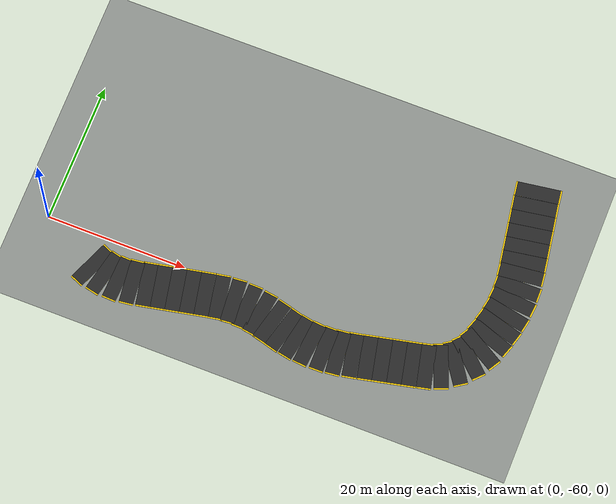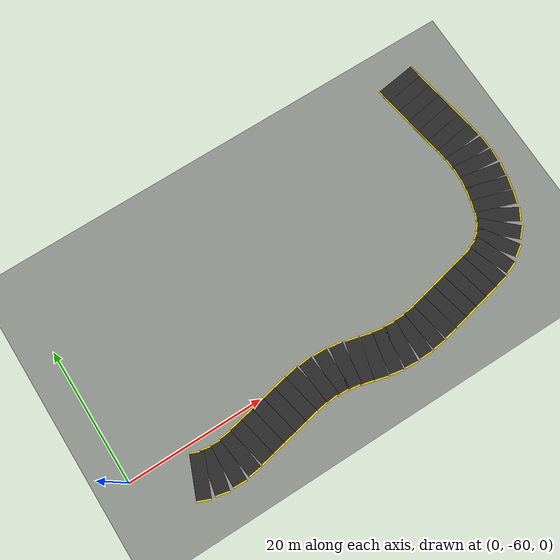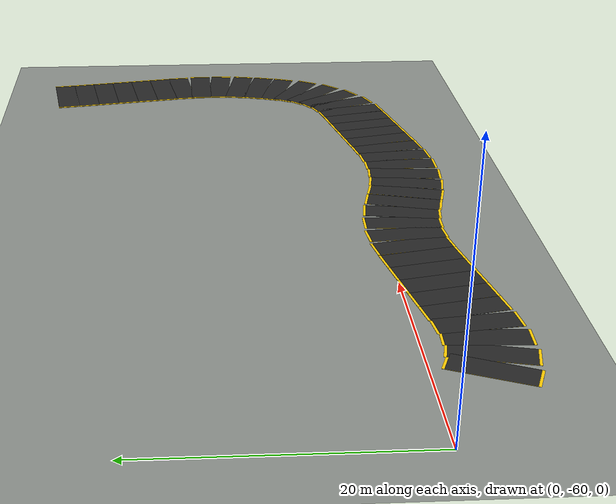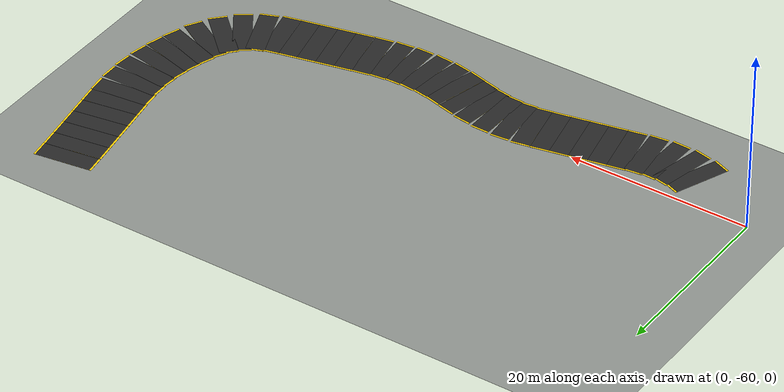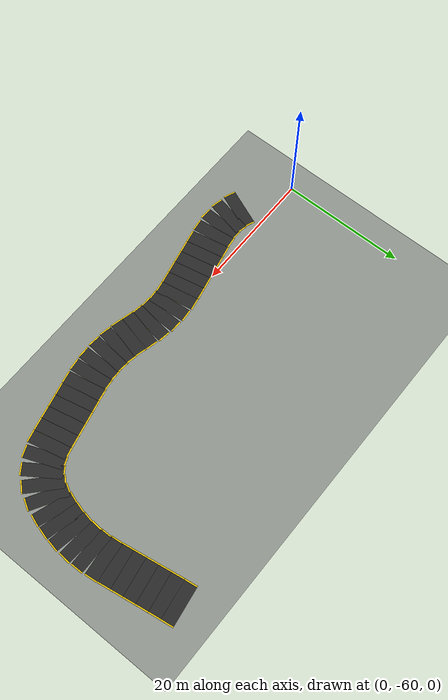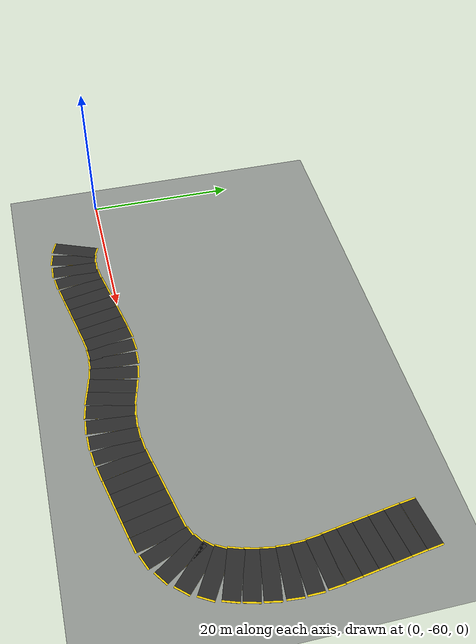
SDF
<sdf version="1.7">
 <world name="custom_road_world">
  <model name="ground_plane">
   <static>true</static>
   <pose>25 -32 -0.005 0 0 0</pose>
   <link name="link">
    <collision name="collision">
     <geometry><plane><normal>0 0 1</normal><size>180 180</size></plane></geometry>
    </collision>
    <visual name="visual">
     <geometry><plane><normal>0 0 1</normal><size>180 180</size></plane></geometry>
     <material>
      <ambient>0.54 0.56 0.54 1</ambient>
      <diffuse>0.54 0.56 0.54 1</diffuse>
      <specular>0.04 0.04 0.04 1</specular>
     </material>
    </visual>
   </link>
  </model>
  <model name="elliptical_road">
   <static>true</static>
   <link name="seg_43">
    <pose>60.941 -32.421 0.01 0 0 -1.426</pose>
    <visual name="yellow_base_43">
     <pose>0 0 0.001 0 0 0</pose>
     <geometry><box><size>2.0 6.4 0.02</size></box></geometry>
     <material>
      <ambient>1.0 0.8 0.0 1.0</ambient>
      <diffuse>1.0 0.8 0.0 1.0</diffuse>
      <specular>0.1 0.1 0.1 1.0</specular>
     </material>
    </visual>
    <visual name="asphalt_top_43">
     <pose>0 0 0.002 0 0 0</pose>
     <geometry><box><size>2.0 6.0 0.02</size></box></geometry>
     <material>
      <ambient>0.15 0.15 0.15 1.0</ambient>
      <diffuse>0.15 0.15 0.15 1.0</diffuse>
      <specular>0.05 0.05 0.05 1.0</specular>
     </material>
    </visual>
    <visual name="center_line_43">
     <pose>0 0 0.003 0 0 0</pose>
     <geometry><box><size>1.0 0.15 0.001</size></box></geometry>
     <material><ambient>0.9 0.9 0.9 1</ambient><diffuse>0.9 0.9 0.9 1</diffuse></material>
    </visual>
    <collision name="collision_43">
     <pose>0 0 0.002 0 0 0</pose>
     <geometry><box><size>2.0 6.0 0.02</size></box></geometry>
    </collision>
   </link>
   <link name="seg_44">
    <pose>61.233 -34.421 0.01 0 0 -1.411</pose>
    <visual name="yellow_base_44">
     <pose>0 0 0.001 0 0 0</pose>
     <geometry><box><size>2.0 6.4 0.02</size></box></geometry>
     <material>
      <ambient>1.0 0.8 0.0 1.0</ambient>
      <diffuse>1.0 0.8 0.0 1.0</diffuse>
      <specular>0.1 0.1 0.1 1.0</specular>
     </material>
    </visual>
    <visual name="asphalt_top_44">
     <pose>0 0 0.002 0 0 0</pose>
     <geometry><box><size>2.0 6.0 0.02</size></box></geometry>
     <material>
      <ambient>0.15 0.15 0.15 1.0</ambient>
      <diffuse>0.15 0.15 0.15 1.0</diffuse>
      <specular>0.05 0.05 0.05 1.0</specular>
     </material>
    </visual>
    <visual name="center_line_44">
     <pose>0 0 0.003 0 0 0</pose>
     <geometry><box><size>1.0 0.15 0.001</size></box></geometry>
     <material><ambient>0.9 0.9 0.9 1</ambient><diffuse>0.9 0.9 0.9 1</diffuse></material>
    </visual>
    <collision name="collision_44">
     <pose>0 0 0.002 0 0 0</pose>
     <geometry><box><size>2.0 6.0 0.02</size></box></geometry>
    </collision>
   </link>
   <link name="seg_45">
    <pose>61.553 -36.396 0.01 0 0 -1.411</pose>
    <visual name="yellow_base_45">
     <pose>0 0 0.001 0 0 0</pose>
     <geometry><box><size>2.0 6.4 0.02</size></box></geometry>
     <material>
      <ambient>1.0 0.8 0.0 1.0</ambient>
      <diffuse>1.0 0.8 0.0 1.0</diffuse>
      <specular>0.1 0.1 0.1 1.0</specular>
     </material>
    </visual>
    <visual name="asphalt_top_45">
     <pose>0 0 0.002 0 0 0</pose>
     <geometry><box><size>2.0 6.0 0.02</size></box></geometry>
     <material>
      <ambient>0.15 0.15 0.15 1.0</ambient>
      <diffuse>0.15 0.15 0.15 1.0</diffuse>
      <specular>0.05 0.05 0.05 1.0</specular>
     </material>
    </visual>
    <visual name="center_line_45">
     <pose>0 0 0.003 0 0 0</pose>
     <geometry><box><size>1.0 0.15 0.001</size></box></geometry>
     <material><ambient>0.9 0.9 0.9 1</ambient><diffuse>0.9 0.9 0.9 1</diffuse></material>
    </visual>
    <collision name="collision_45">
     <pose>0 0 0.002 0 0 0</pose>
     <geometry><box><size>2.0 6.0 0.02</size></box></geometry>
    </collision>
   </link>
   <link name="seg_46">
    <pose>61.872 -38.370 0.01 0 0 -1.411</pose>
    <visual name="yellow_base_46">
     <pose>0 0 0.001 0 0 0</pose>
     <geometry><box><size>2.0 6.4 0.02</size></box></geometry>
     <material>
      <ambient>1.0 0.8 0.0 1.0</ambient>
      <diffuse>1.0 0.8 0.0 1.0</diffuse>
      <specular>0.1 0.1 0.1 1.0</specular>
     </material>
    </visual>
    <visual name="asphalt_top_46">
     <pose>0 0 0.002 0 0 0</pose>
     <geometry><box><size>2.0 6.0 0.02</size></box></geometry>
     <material>
      <ambient>0.15 0.15 0.15 1.0</ambient>
      <diffuse>0.15 0.15 0.15 1.0</diffuse>
      <specular>0.05 0.05 0.05 1.0</specular>
     </material>
    </visual>
    <visual name="center_line_46">
     <pose>0 0 0.003 0 0 0</pose>
     <geometry><box><size>1.0 0.15 0.001</size></box></geometry>
     <material><ambient>0.9 0.9 0.9 1</ambient><diffuse>0.9 0.9 0.9 1</diffuse></material>
    </visual>
    <collision name="collision_46">
     <pose>0 0 0.002 0 0 0</pose>
     <geometry><box><size>2.0 6.0 0.02</size></box></geometry>
    </collision>
   </link>
   <link name="seg_47">
    <pose>62.191 -40.344 0.01 0 0 -1.411</pose>
    <visual name="yellow_base_47">
     <pose>0 0 0.001 0 0 0</pose>
     <geometry><box><size>2.0 6.4 0.02</size></box></geometry>
     <material>
      <ambient>1.0 0.8 0.0 1.0</ambient>
      <diffuse>1.0 0.8 0.0 1.0</diffuse>
      <specular>0.1 0.1 0.1 1.0</specular>
     </material>
    </visual>
    <visual name="asphalt_top_47">
     <pose>0 0 0.002 0 0 0</pose>
     <geometry><box><size>2.0 6.0 0.02</size></box></geometry>
     <material>
      <ambient>0.15 0.15 0.15 1.0</ambient>
      <diffuse>0.15 0.15 0.15 1.0</diffuse>
      <specular>0.05 0.05 0.05 1.0</specular>
     </material>
    </visual>
    <visual name="center_line_47">
     <pose>0 0 0.003 0 0 0</pose>
     <geometry><box><size>1.0 0.15 0.001</size></box></geometry>
     <material><ambient>0.9 0.9 0.9 1</ambient><diffuse>0.9 0.9 0.9 1</diffuse></material>
    </visual>
    <collision name="collision_47">
     <pose>0 0 0.002 0 0 0</pose>
     <geometry><box><size>2.0 6.0 0.02</size></box></geometry>
    </collision>
   </link>
   <link name="seg_48">
    <pose>62.510 -42.319 0.01 0 0 -1.413</pose>
    <visual name="yellow_base_48">
     <pose>0 0 0.001 0 0 0</pose>
     <geometry><box><size>2.0 6.4 0.02</size></box></geometry>
     <material>
      <ambient>1.0 0.8 0.0 1.0</ambient>
      <diffuse>1.0 0.8 0.0 1.0</diffuse>
      <specular>0.1 0.1 0.1 1.0</specular>
     </material>
    </visual>
    <visual name="asphalt_top_48">
     <pose>0 0 0.002 0 0 0</pose>
     <geometry><box><size>2.0 6.0 0.02</size></box></geometry>
     <material>
      <ambient>0.15 0.15 0.15 1.0</ambient>
      <diffuse>0.15 0.15 0.15 1.0</diffuse>
      <specular>0.05 0.05 0.05 1.0</specular>
     </material>
    </visual>
    <visual name="center_line_48">
     <pose>0 0 0.003 0 0 0</pose>
     <geometry><box><size>1.0 0.15 0.001</size></box></geometry>
     <material><ambient>0.9 0.9 0.9 1</ambient><diffuse>0.9 0.9 0.9 1</diffuse></material>
    </visual>
    <collision name="collision_48">
     <pose>0 0 0.002 0 0 0</pose>
     <geometry><box><size>2.0 6.0 0.02</size></box></geometry>
    </collision>
   </link>
   <link name="seg_49">
    <pose>62.812 -44.216 0.01 0 0 -1.463</pose>
    <visual name="yellow_base_49">
     <pose>0 0 0.001 0 0 0</pose>
     <geometry><box><size>2.0 6.4 0.02</size></box></geometry>
     <material>
      <ambient>1.0 0.8 0.0 1.0</ambient>
      <diffuse>1.0 0.8 0.0 1.0</diffuse>
      <specular>0.1 0.1 0.1 1.0</specular>
     </material>
    </visual>
    <visual name="asphalt_top_49">
     <pose>0 0 0.002 0 0 0</pose>
     <geometry><box><size>2.0 6.0 0.02</size></box></geometry>
     <material>
      <ambient>0.15 0.15 0.15 1.0</ambient>
      <diffuse>0.15 0.15 0.15 1.0</diffuse>
      <specular>0.05 0.05 0.05 1.0</specular>
     </material>
    </visual>
    <visual name="center_line_49">
     <pose>0 0 0.003 0 0 0</pose>
     <geometry><box><size>1.0 0.15 0.001</size></box></geometry>
     <material><ambient>0.9 0.9 0.9 1</ambient><diffuse>0.9 0.9 0.9 1</diffuse></material>
    </visual>
    <collision name="collision_49">
     <pose>0 0 0.002 0 0 0</pose>
     <geometry><box><size>2.0 6.0 0.02</size></box></geometry>
    </collision>
   </link>
   <link name="seg_50">
    <pose>63.034 -46.258 0.01 0 0 -1.560</pose>
    <visual name="yellow_base_50">
     <pose>0 0 0.001 0 0 0</pose>
     <geometry><box><size>2.0 6.4 0.02</size></box></geometry>
     <material>
      <ambient>1.0 0.8 0.0 1.0</ambient>
      <diffuse>1.0 0.8 0.0 1.0</diffuse>
      <specular>0.1 0.1 0.1 1.0</specular>
     </material>
    </visual>
    <visual name="asphalt_top_50">
     <pose>0 0 0.002 0 0 0</pose>
     <geometry><box><size>2.0 6.0 0.02</size></box></geometry>
     <material>
      <ambient>0.15 0.15 0.15 1.0</ambient>
      <diffuse>0.15 0.15 0.15 1.0</diffuse>
      <specular>0.05 0.05 0.05 1.0</specular>
     </material>
    </visual>
    <visual name="center_line_50">
     <pose>0 0 0.003 0 0 0</pose>
     <geometry><box><size>1.0 0.15 0.001</size></box></geometry>
     <material><ambient>0.9 0.9 0.9 1</ambient><diffuse>0.9 0.9 0.9 1</diffuse></material>
    </visual>
    <collision name="collision_50">
     <pose>0 0 0.002 0 0 0</pose>
     <geometry><box><size>2.0 6.0 0.02</size></box></geometry>
    </collision>
   </link>
   <link name="seg_51">
    <pose>63.056 -48.228 0.01 0 0 -1.660</pose>
    <visual name="yellow_base_51">
     <pose>0 0 0.001 0 0 0</pose>
     <geometry><box><size>2.0 6.4 0.02</size></box></geometry>
     <material>
      <ambient>1.0 0.8 0.0 1.0</ambient>
      <diffuse>1.0 0.8 0.0 1.0</diffuse>
      <specular>0.1 0.1 0.1 1.0</specular>
     </material>
    </visual>
    <visual name="asphalt_top_51">
     <pose>0 0 0.002 0 0 0</pose>
     <geometry><box><size>2.0 6.0 0.02</size></box></geometry>
     <material>
      <ambient>0.15 0.15 0.15 1.0</ambient>
      <diffuse>0.15 0.15 0.15 1.0</diffuse>
      <specular>0.05 0.05 0.05 1.0</specular>
     </material>
    </visual>
    <visual name="center_line_51">
     <pose>0 0 0.003 0 0 0</pose>
     <geometry><box><size>1.0 0.15 0.001</size></box></geometry>
     <material><ambient>0.9 0.9 0.9 1</ambient><diffuse>0.9 0.9 0.9 1</diffuse></material>
    </visual>
    <collision name="collision_51">
     <pose>0 0 0.002 0 0 0</pose>
     <geometry><box><size>2.0 6.0 0.02</size></box></geometry>
    </collision>
   </link>
   <link name="seg_52">
    <pose>62.870 -50.298 0.01 0 0 -1.760</pose>
    <visual name="yellow_base_52">
     <pose>0 0 0.001 0 0 0</pose>
     <geometry><box><size>2.0 6.4 0.02</size></box></geometry>
     <material>
      <ambient>1.0 0.8 0.0 1.0</ambient>
      <diffuse>1.0 0.8 0.0 1.0</diffuse>
      <specular>0.1 0.1 0.1 1.0</specular>
     </material>
    </visual>
    <visual name="asphalt_top_52">
     <pose>0 0 0.002 0 0 0</pose>
     <geometry><box><size>2.0 6.0 0.02</size></box></geometry>
     <material>
      <ambient>0.15 0.15 0.15 1.0</ambient>
      <diffuse>0.15 0.15 0.15 1.0</diffuse>
      <specular>0.05 0.05 0.05 1.0</specular>
     </material>
    </visual>
    <visual name="center_line_52">
     <pose>0 0 0.003 0 0 0</pose>
     <geometry><box><size>1.0 0.15 0.001</size></box></geometry>
     <material><ambient>0.9 0.9 0.9 1</ambient><diffuse>0.9 0.9 0.9 1</diffuse></material>
    </visual>
    <collision name="collision_52">
     <pose>0 0 0.002 0 0 0</pose>
     <geometry><box><size>2.0 6.0 0.02</size></box></geometry>
    </collision>
   </link>
   <link name="seg_53">
    <pose>62.500 -52.233 0.01 0 0 -1.841</pose>
    <visual name="yellow_base_53">
     <pose>0 0 0.001 0 0 0</pose>
     <geometry><box><size>2.0 6.4 0.02</size></box></geometry>
     <material>
      <ambient>1.0 0.8 0.0 1.0</ambient>
      <diffuse>1.0 0.8 0.0 1.0</diffuse>
      <specular>0.1 0.1 0.1 1.0</specular>
     </material>
    </visual>
    <visual name="asphalt_top_53">
     <pose>0 0 0.002 0 0 0</pose>
     <geometry><box><size>2.0 6.0 0.02</size></box></geometry>
     <material>
      <ambient>0.15 0.15 0.15 1.0</ambient>
      <diffuse>0.15 0.15 0.15 1.0</diffuse>
      <specular>0.05 0.05 0.05 1.0</specular>
     </material>
    </visual>
    <visual name="center_line_53">
     <pose>0 0 0.003 0 0 0</pose>
     <geometry><box><size>1.0 0.15 0.001</size></box></geometry>
     <material><ambient>0.9 0.9 0.9 1</ambient><diffuse>0.9 0.9 0.9 1</diffuse></material>
    </visual>
    <collision name="collision_53">
     <pose>0 0 0.002 0 0 0</pose>
     <geometry><box><size>2.0 6.0 0.02</size></box></geometry>
    </collision>
   </link>
   <link name="seg_54">
    <pose>61.971 -54.144 0.01 0 0 -1.905</pose>
    <visual name="yellow_base_54">
     <pose>0 0 0.001 0 0 0</pose>
     <geometry><box><size>2.0 6.4 0.02</size></box></geometry>
     <material>
      <ambient>1.0 0.8 0.0 1.0</ambient>
      <diffuse>1.0 0.8 0.0 1.0</diffuse>
      <specular>0.1 0.1 0.1 1.0</specular>
     </material>
    </visual>
    <visual name="asphalt_top_54">
     <pose>0 0 0.002 0 0 0</pose>
     <geometry><box><size>2.0 6.0 0.02</size></box></geometry>
     <material>
      <ambient>0.15 0.15 0.15 1.0</ambient>
      <diffuse>0.15 0.15 0.15 1.0</diffuse>
      <specular>0.05 0.05 0.05 1.0</specular>
     </material>
    </visual>
    <visual name="center_line_54">
     <pose>0 0 0.003 0 0 0</pose>
     <geometry><box><size>1.0 0.15 0.001</size></box></geometry>
     <material><ambient>0.9 0.9 0.9 1</ambient><diffuse>0.9 0.9 0.9 1</diffuse></material>
    </visual>
    <collision name="collision_54">
     <pose>0 0 0.002 0 0 0</pose>
     <geometry><box><size>2.0 6.0 0.02</size></box></geometry>
    </collision>
   </link>
   <link name="seg_55">
    <pose>61.303 -56.066 0.01 0 0 -2.103</pose>
    <visual name="yellow_base_55">
     <pose>0 0 0.001 0 0 0</pose>
     <geometry><box><size>2.0 6.4 0.02</size></box></geometry>
     <material>
      <ambient>1.0 0.8 0.0 1.0</ambient>
      <diffuse>1.0 0.8 0.0 1.0</diffuse>
      <specular>0.1 0.1 0.1 1.0</specular>
     </material>
    </visual>
    <visual name="asphalt_top_55">
     <pose>0 0 0.002 0 0 0</pose>
     <geometry><box><size>2.0 6.0 0.02</size></box></geometry>
     <material>
      <ambient>0.15 0.15 0.15 1.0</ambient>
      <diffuse>0.15 0.15 0.15 1.0</diffuse>
      <specular>0.05 0.05 0.05 1.0</specular>
     </material>
    </visual>
    <visual name="center_line_55">
     <pose>0 0 0.003 0 0 0</pose>
     <geometry><box><size>1.0 0.15 0.001</size></box></geometry>
     <material><ambient>0.9 0.9 0.9 1</ambient><diffuse>0.9 0.9 0.9 1</diffuse></material>
    </visual>
    <collision name="collision_55">
     <pose>0 0 0.002 0 0 0</pose>
     <geometry><box><size>2.0 6.0 0.02</size></box></geometry>
    </collision>
   </link>
   <link name="seg_56">
    <pose>60.295 -57.778 0.01 0 0 -2.326</pose>
    <visual name="yellow_base_56">
     <pose>0 0 0.001 0 0 0</pose>
     <geometry><box><size>2.0 6.4 0.02</size></box></geometry>
     <material>
      <ambient>1.0 0.8 0.0 1.0</ambient>
      <diffuse>1.0 0.8 0.0 1.0</diffuse>
      <specular>0.1 0.1 0.1 1.0</specular>
     </material>
    </visual>
    <visual name="asphalt_top_56">
     <pose>0 0 0.002 0 0 0</pose>
     <geometry><box><size>2.0 6.0 0.02</size></box></geometry>
     <material>
      <ambient>0.15 0.15 0.15 1.0</ambient>
      <diffuse>0.15 0.15 0.15 1.0</diffuse>
      <specular>0.05 0.05 0.05 1.0</specular>
     </material>
    </visual>
    <visual name="center_line_56">
     <pose>0 0 0.003 0 0 0</pose>
     <geometry><box><size>1.0 0.15 0.001</size></box></geometry>
     <material><ambient>0.9 0.9 0.9 1</ambient><diffuse>0.9 0.9 0.9 1</diffuse></material>
    </visual>
    <collision name="collision_56">
     <pose>0 0 0.002 0 0 0</pose>
     <geometry><box><size>2.0 6.0 0.02</size></box></geometry>
    </collision>
   </link>
   <link name="seg_57">
    <pose>58.934 -59.224 0.01 0 0 -2.549</pose>
    <visual name="yellow_base_57">
     <pose>0 0 0.001 0 0 0</pose>
     <geometry><box><size>2.0 6.4 0.02</size></box></geometry>
     <material>
      <ambient>1.0 0.8 0.0 1.0</ambient>
      <diffuse>1.0 0.8 0.0 1.0</diffuse>
      <specular>0.1 0.1 0.1 1.0</specular>
     </material>
    </visual>
    <visual name="asphalt_top_57">
     <pose>0 0 0.002 0 0 0</pose>
     <geometry><box><size>2.0 6.0 0.02</size></box></geometry>
     <material>
      <ambient>0.15 0.15 0.15 1.0</ambient>
      <diffuse>0.15 0.15 0.15 1.0</diffuse>
      <specular>0.05 0.05 0.05 1.0</specular>
     </material>
    </visual>
    <visual name="center_line_57">
     <pose>0 0 0.003 0 0 0</pose>
     <geometry><box><size>1.0 0.15 0.001</size></box></geometry>
     <material><ambient>0.9 0.9 0.9 1</ambient><diffuse>0.9 0.9 0.9 1</diffuse></material>
    </visual>
    <collision name="collision_57">
     <pose>0 0 0.002 0 0 0</pose>
     <geometry><box><size>2.0 6.0 0.02</size></box></geometry>
    </collision>
   </link>
   <link name="seg_58">
    <pose>57.286 -60.333 0.01 0 0 -2.769</pose>
    <visual name="yellow_base_58">
     <pose>0 0 0.001 0 0 0</pose>
     <geometry><box><size>2.0 6.4 0.02</size></box></geometry>
     <material>
      <ambient>1.0 0.8 0.0 1.0</ambient>
      <diffuse>1.0 0.8 0.0 1.0</diffuse>
      <specular>0.1 0.1 0.1 1.0</specular>
     </material>
    </visual>
    <visual name="asphalt_top_58">
     <pose>0 0 0.002 0 0 0</pose>
     <geometry><box><size>2.0 6.0 0.02</size></box></geometry>
     <material>
      <ambient>0.15 0.15 0.15 1.0</ambient>
      <diffuse>0.15 0.15 0.15 1.0</diffuse>
      <specular>0.05 0.05 0.05 1.0</specular>
     </material>
    </visual>
    <visual name="center_line_58">
     <pose>0 0 0.003 0 0 0</pose>
     <geometry><box><size>1.0 0.15 0.001</size></box></geometry>
     <material><ambient>0.9 0.9 0.9 1</ambient><diffuse>0.9 0.9 0.9 1</diffuse></material>
    </visual>
    <collision name="collision_58">
     <pose>0 0 0.002 0 0 0</pose>
     <geometry><box><size>2.0 6.0 0.02</size></box></geometry>
    </collision>
   </link>
   <link name="seg_59">
    <pose>55.459 -61.047 0.01 0 0 -2.912</pose>
    <visual name="yellow_base_59">
     <pose>0 0 0.001 0 0 0</pose>
     <geometry><box><size>2.0 6.4 0.02</size></box></geometry>
     <material>
      <ambient>1.0 0.8 0.0 1.0</ambient>
      <diffuse>1.0 0.8 0.0 1.0</diffuse>
      <specular>0.1 0.1 0.1 1.0</specular>
     </material>
    </visual>
    <visual name="asphalt_top_59">
     <pose>0 0 0.002 0 0 0</pose>
     <geometry><box><size>2.0 6.0 0.02</size></box></geometry>
     <material>
      <ambient>0.15 0.15 0.15 1.0</ambient>
      <diffuse>0.15 0.15 0.15 1.0</diffuse>
      <specular>0.05 0.05 0.05 1.0</specular>
     </material>
    </visual>
    <visual name="center_line_59">
     <pose>0 0 0.003 0 0 0</pose>
     <geometry><box><size>1.0 0.15 0.001</size></box></geometry>
     <material><ambient>0.9 0.9 0.9 1</ambient><diffuse>0.9 0.9 0.9 1</diffuse></material>
    </visual>
    <collision name="collision_59">
     <pose>0 0 0.002 0 0 0</pose>
     <geometry><box><size>2.0 6.0 0.02</size></box></geometry>
    </collision>
   </link>
   <link name="seg_60">
    <pose>53.515 -61.501 0.01 0 0 -2.925</pose>
    <visual name="yellow_base_60">
     <pose>0 0 0.001 0 0 0</pose>
     <geometry><box><size>2.0 6.4 0.02</size></box></geometry>
     <material>
      <ambient>1.0 0.8 0.0 1.0</ambient>
      <diffuse>1.0 0.8 0.0 1.0</diffuse>
      <specular>0.1 0.1 0.1 1.0</specular>
     </material>
    </visual>
    <visual name="asphalt_top_60">
     <pose>0 0 0.002 0 0 0</pose>
     <geometry><box><size>2.0 6.0 0.02</size></box></geometry>
     <material>
      <ambient>0.15 0.15 0.15 1.0</ambient>
      <diffuse>0.15 0.15 0.15 1.0</diffuse>
      <specular>0.05 0.05 0.05 1.0</specular>
     </material>
    </visual>
    <visual name="center_line_60">
     <pose>0 0 0.003 0 0 0</pose>
     <geometry><box><size>1.0 0.15 0.001</size></box></geometry>
     <material><ambient>0.9 0.9 0.9 1</ambient><diffuse>0.9 0.9 0.9 1</diffuse></material>
    </visual>
    <collision name="collision_60">
     <pose>0 0 0.002 0 0 0</pose>
     <geometry><box><size>2.0 6.0 0.02</size></box></geometry>
    </collision>
   </link>
   <link name="seg_61">
    <pose>51.562 -61.931 0.01 0 0 -2.925</pose>
    <visual name="yellow_base_61">
     <pose>0 0 0.001 0 0 0</pose>
     <geometry><box><size>2.0 6.4 0.02</size></box></geometry>
     <material>
      <ambient>1.0 0.8 0.0 1.0</ambient>
      <diffuse>1.0 0.8 0.0 1.0</diffuse>
      <specular>0.1 0.1 0.1 1.0</specular>
     </material>
    </visual>
    <visual name="asphalt_top_61">
     <pose>0 0 0.002 0 0 0</pose>
     <geometry><box><size>2.0 6.0 0.02</size></box></geometry>
     <material>
      <ambient>0.15 0.15 0.15 1.0</ambient>
      <diffuse>0.15 0.15 0.15 1.0</diffuse>
      <specular>0.05 0.05 0.05 1.0</specular>
     </material>
    </visual>
    <visual name="center_line_61">
     <pose>0 0 0.003 0 0 0</pose>
     <geometry><box><size>1.0 0.15 0.001</size></box></geometry>
     <material><ambient>0.9 0.9 0.9 1</ambient><diffuse>0.9 0.9 0.9 1</diffuse></material>
    </visual>
    <collision name="collision_61">
     <pose>0 0 0.002 0 0 0</pose>
     <geometry><box><size>2.0 6.0 0.02</size></box></geometry>
    </collision>
   </link>
   <link name="seg_62">
    <pose>49.609 -62.362 0.01 0 0 -2.925</pose>
    <visual name="yellow_base_62">
     <pose>0 0 0.001 0 0 0</pose>
     <geometry><box><size>2.0 6.4 0.02</size></box></geometry>
     <material>
      <ambient>1.0 0.8 0.0 1.0</ambient>
      <diffuse>1.0 0.8 0.0 1.0</diffuse>
      <specular>0.1 0.1 0.1 1.0</specular>
     </material>
    </visual>
    <visual name="asphalt_top_62">
     <pose>0 0 0.002 0 0 0</pose>
     <geometry><box><size>2.0 6.0 0.02</size></box></geometry>
     <material>
      <ambient>0.15 0.15 0.15 1.0</ambient>
      <diffuse>0.15 0.15 0.15 1.0</diffuse>
      <specular>0.05 0.05 0.05 1.0</specular>
     </material>
    </visual>
    <visual name="center_line_62">
     <pose>0 0 0.003 0 0 0</pose>
     <geometry><box><size>1.0 0.15 0.001</size></box></geometry>
     <material><ambient>0.9 0.9 0.9 1</ambient><diffuse>0.9 0.9 0.9 1</diffuse></material>
    </visual>
    <collision name="collision_62">
     <pose>0 0 0.002 0 0 0</pose>
     <geometry><box><size>2.0 6.0 0.02</size></box></geometry>
    </collision>
   </link>
   <link name="seg_63">
    <pose>47.656 -62.793 0.01 0 0 -2.925</pose>
    <visual name="yellow_base_63">
     <pose>0 0 0.001 0 0 0</pose>
     <geometry><box><size>2.0 6.4 0.02</size></box></geometry>
     <material>
      <ambient>1.0 0.8 0.0 1.0</ambient>
      <diffuse>1.0 0.8 0.0 1.0</diffuse>
      <specular>0.1 0.1 0.1 1.0</specular>
     </material>
    </visual>
    <visual name="asphalt_top_63">
     <pose>0 0 0.002 0 0 0</pose>
     <geometry><box><size>2.0 6.0 0.02</size></box></geometry>
     <material>
      <ambient>0.15 0.15 0.15 1.0</ambient>
      <diffuse>0.15 0.15 0.15 1.0</diffuse>
      <specular>0.05 0.05 0.05 1.0</specular>
     </material>
    </visual>
    <visual name="center_line_63">
     <pose>0 0 0.003 0 0 0</pose>
     <geometry><box><size>1.0 0.15 0.001</size></box></geometry>
     <material><ambient>0.9 0.9 0.9 1</ambient><diffuse>0.9 0.9 0.9 1</diffuse></material>
    </visual>
    <collision name="collision_63">
     <pose>0 0 0.002 0 0 0</pose>
     <geometry><box><size>2.0 6.0 0.02</size></box></geometry>
    </collision>
   </link>
   <link name="seg_64">
    <pose>45.699 -63.224 0.01 0 0 -2.951</pose>
    <visual name="yellow_base_64">
     <pose>0 0 0.001 0 0 0</pose>
     <geometry><box><size>2.0 6.4 0.02</size></box></geometry>
     <material>
      <ambient>1.0 0.8 0.0 1.0</ambient>
      <diffuse>1.0 0.8 0.0 1.0</diffuse>
      <specular>0.1 0.1 0.1 1.0</specular>
     </material>
    </visual>
    <visual name="asphalt_top_64">
     <pose>0 0 0.002 0 0 0</pose>
     <geometry><box><size>2.0 6.0 0.02</size></box></geometry>
     <material>
      <ambient>0.15 0.15 0.15 1.0</ambient>
      <diffuse>0.15 0.15 0.15 1.0</diffuse>
      <specular>0.05 0.05 0.05 1.0</specular>
     </material>
    </visual>
    <visual name="center_line_64">
     <pose>0 0 0.003 0 0 0</pose>
     <geometry><box><size>1.0 0.15 0.001</size></box></geometry>
     <material><ambient>0.9 0.9 0.9 1</ambient><diffuse>0.9 0.9 0.9 1</diffuse></material>
    </visual>
    <collision name="collision_64">
     <pose>0 0 0.002 0 0 0</pose>
     <geometry><box><size>2.0 6.0 0.02</size></box></geometry>
    </collision>
   </link>
   <link name="seg_65">
    <pose>43.725 -63.604 0.01 0 0 -3.038</pose>
    <visual name="yellow_base_65">
     <pose>0 0 0.001 0 0 0</pose>
     <geometry><box><size>2.0 6.4 0.02</size></box></geometry>
     <material>
      <ambient>1.0 0.8 0.0 1.0</ambient>
      <diffuse>1.0 0.8 0.0 1.0</diffuse>
      <specular>0.1 0.1 0.1 1.0</specular>
     </material>
    </visual>
    <visual name="asphalt_top_65">
     <pose>0 0 0.002 0 0 0</pose>
     <geometry><box><size>2.0 6.0 0.02</size></box></geometry>
     <material>
      <ambient>0.15 0.15 0.15 1.0</ambient>
      <diffuse>0.15 0.15 0.15 1.0</diffuse>
      <specular>0.05 0.05 0.05 1.0</specular>
     </material>
    </visual>
    <visual name="center_line_65">
     <pose>0 0 0.003 0 0 0</pose>
     <geometry><box><size>1.0 0.15 0.001</size></box></geometry>
     <material><ambient>0.9 0.9 0.9 1</ambient><diffuse>0.9 0.9 0.9 1</diffuse></material>
    </visual>
    <collision name="collision_65">
     <pose>0 0 0.002 0 0 0</pose>
     <geometry><box><size>2.0 6.0 0.02</size></box></geometry>
    </collision>
   </link>
   <link name="seg_66">
    <pose>41.769 -63.808 0.01 0 0 -3.136</pose>
    <visual name="yellow_base_66">
     <pose>0 0 0.001 0 0 0</pose>
     <geometry><box><size>2.0 6.4 0.02</size></box></geometry>
     <material>
      <ambient>1.0 0.8 0.0 1.0</ambient>
      <diffuse>1.0 0.8 0.0 1.0</diffuse>
      <specular>0.1 0.1 0.1 1.0</specular>
     </material>
    </visual>
    <visual name="asphalt_top_66">
     <pose>0 0 0.002 0 0 0</pose>
     <geometry><box><size>2.0 6.0 0.02</size></box></geometry>
     <material>
      <ambient>0.15 0.15 0.15 1.0</ambient>
      <diffuse>0.15 0.15 0.15 1.0</diffuse>
      <specular>0.05 0.05 0.05 1.0</specular>
     </material>
    </visual>
    <visual name="center_line_66">
     <pose>0 0 0.003 0 0 0</pose>
     <geometry><box><size>1.0 0.15 0.001</size></box></geometry>
     <material><ambient>0.9 0.9 0.9 1</ambient><diffuse>0.9 0.9 0.9 1</diffuse></material>
    </visual>
    <collision name="collision_66">
     <pose>0 0 0.002 0 0 0</pose>
     <geometry><box><size>2.0 6.0 0.02</size></box></geometry>
    </collision>
   </link>
   <link name="seg_67">
    <pose>39.693 -63.819 0.01 0 0 3.048</pose>
    <visual name="yellow_base_67">
     <pose>0 0 0.001 0 0 0</pose>
     <geometry><box><size>2.0 6.4 0.02</size></box></geometry>
     <material>
      <ambient>1.0 0.8 0.0 1.0</ambient>
      <diffuse>1.0 0.8 0.0 1.0</diffuse>
      <specular>0.1 0.1 0.1 1.0</specular>
     </material>
    </visual>
    <visual name="asphalt_top_67">
     <pose>0 0 0.002 0 0 0</pose>
     <geometry><box><size>2.0 6.0 0.02</size></box></geometry>
     <material>
      <ambient>0.15 0.15 0.15 1.0</ambient>
      <diffuse>0.15 0.15 0.15 1.0</diffuse>
      <specular>0.05 0.05 0.05 1.0</specular>
     </material>
    </visual>
    <visual name="center_line_67">
     <pose>0 0 0.003 0 0 0</pose>
     <geometry><box><size>1.0 0.15 0.001</size></box></geometry>
     <material><ambient>0.9 0.9 0.9 1</ambient><diffuse>0.9 0.9 0.9 1</diffuse></material>
    </visual>
    <collision name="collision_67">
     <pose>0 0 0.002 0 0 0</pose>
     <geometry><box><size>2.0 6.0 0.02</size></box></geometry>
    </collision>
   </link>
   <link name="seg_68">
    <pose>37.734 -63.636 0.01 0 0 2.953</pose>
    <visual name="yellow_base_68">
     <pose>0 0 0.001 0 0 0</pose>
     <geometry><box><size>2.0 6.4 0.02</size></box></geometry>
     <material>
      <ambient>1.0 0.8 0.0 1.0</ambient>
      <diffuse>1.0 0.8 0.0 1.0</diffuse>
      <specular>0.1 0.1 0.1 1.0</specular>
     </material>
    </visual>
    <visual name="asphalt_top_68">
     <pose>0 0 0.002 0 0 0</pose>
     <geometry><box><size>2.0 6.0 0.02</size></box></geometry>
     <material>
      <ambient>0.15 0.15 0.15 1.0</ambient>
      <diffuse>0.15 0.15 0.15 1.0</diffuse>
      <specular>0.05 0.05 0.05 1.0</specular>
     </material>
    </visual>
    <visual name="center_line_68">
     <pose>0 0 0.003 0 0 0</pose>
     <geometry><box><size>1.0 0.15 0.001</size></box></geometry>
     <material><ambient>0.9 0.9 0.9 1</ambient><diffuse>0.9 0.9 0.9 1</diffuse></material>
    </visual>
    <collision name="collision_68">
     <pose>0 0 0.002 0 0 0</pose>
     <geometry><box><size>2.0 6.0 0.02</size></box></geometry>
    </collision>
   </link>
   <link name="seg_69">
    <pose>35.807 -63.269 0.01 0 0 2.883</pose>
    <visual name="yellow_base_69">
     <pose>0 0 0.001 0 0 0</pose>
     <geometry><box><size>2.0 6.4 0.02</size></box></geometry>
     <material>
      <ambient>1.0 0.8 0.0 1.0</ambient>
      <diffuse>1.0 0.8 0.0 1.0</diffuse>
      <specular>0.1 0.1 0.1 1.0</specular>
     </material>
    </visual>
    <visual name="asphalt_top_69">
     <pose>0 0 0.002 0 0 0</pose>
     <geometry><box><size>2.0 6.0 0.02</size></box></geometry>
     <material>
      <ambient>0.15 0.15 0.15 1.0</ambient>
      <diffuse>0.15 0.15 0.15 1.0</diffuse>
      <specular>0.05 0.05 0.05 1.0</specular>
     </material>
    </visual>
    <visual name="center_line_69">
     <pose>0 0 0.003 0 0 0</pose>
     <geometry><box><size>1.0 0.15 0.001</size></box></geometry>
     <material><ambient>0.9 0.9 0.9 1</ambient><diffuse>0.9 0.9 0.9 1</diffuse></material>
    </visual>
    <collision name="collision_69">
     <pose>0 0 0.002 0 0 0</pose>
     <geometry><box><size>2.0 6.0 0.02</size></box></geometry>
    </collision>
   </link>
   <link name="seg_70">
    <pose>33.819 -62.744 0.01 0 0 2.902</pose>
    <visual name="yellow_base_70">
     <pose>0 0 0.001 0 0 0</pose>
     <geometry><box><size>2.0 6.4 0.02</size></box></geometry>
     <material>
      <ambient>1.0 0.8 0.0 1.0</ambient>
      <diffuse>1.0 0.8 0.0 1.0</diffuse>
      <specular>0.1 0.1 0.1 1.0</specular>
     </material>
    </visual>
    <visual name="asphalt_top_70">
     <pose>0 0 0.002 0 0 0</pose>
     <geometry><box><size>2.0 6.0 0.02</size></box></geometry>
     <material>
      <ambient>0.15 0.15 0.15 1.0</ambient>
      <diffuse>0.15 0.15 0.15 1.0</diffuse>
      <specular>0.05 0.05 0.05 1.0</specular>
     </material>
    </visual>
    <visual name="center_line_70">
     <pose>0 0 0.003 0 0 0</pose>
     <geometry><box><size>1.0 0.15 0.001</size></box></geometry>
     <material><ambient>0.9 0.9 0.9 1</ambient><diffuse>0.9 0.9 0.9 1</diffuse></material>
    </visual>
    <collision name="collision_70">
     <pose>0 0 0.002 0 0 0</pose>
     <geometry><box><size>2.0 6.0 0.02</size></box></geometry>
    </collision>
   </link>
   <link name="seg_71">
    <pose>31.899 -62.274 0.01 0 0 3.002</pose>
    <visual name="yellow_base_71">
     <pose>0 0 0.001 0 0 0</pose>
     <geometry><box><size>2.0 6.4 0.02</size></box></geometry>
     <material>
      <ambient>1.0 0.8 0.0 1.0</ambient>
      <diffuse>1.0 0.8 0.0 1.0</diffuse>
      <specular>0.1 0.1 0.1 1.0</specular>
     </material>
    </visual>
    <visual name="asphalt_top_71">
     <pose>0 0 0.002 0 0 0</pose>
     <geometry><box><size>2.0 6.0 0.02</size></box></geometry>
     <material>
      <ambient>0.15 0.15 0.15 1.0</ambient>
      <diffuse>0.15 0.15 0.15 1.0</diffuse>
      <specular>0.05 0.05 0.05 1.0</specular>
     </material>
    </visual>
    <visual name="center_line_71">
     <pose>0 0 0.003 0 0 0</pose>
     <geometry><box><size>1.0 0.15 0.001</size></box></geometry>
     <material><ambient>0.9 0.9 0.9 1</ambient><diffuse>0.9 0.9 0.9 1</diffuse></material>
    </visual>
    <collision name="collision_71">
     <pose>0 0 0.002 0 0 0</pose>
     <geometry><box><size>2.0 6.0 0.02</size></box></geometry>
    </collision>
   </link>
   <link name="seg_72">
    <pose>29.918 -61.997 0.01 0 0 3.116</pose>
    <visual name="yellow_base_72">
     <pose>0 0 0.001 0 0 0</pose>
     <geometry><box><size>2.0 6.4 0.02</size></box></geometry>
     <material>
      <ambient>1.0 0.8 0.0 1.0</ambient>
      <diffuse>1.0 0.8 0.0 1.0</diffuse>
      <specular>0.1 0.1 0.1 1.0</specular>
     </material>
    </visual>
    <visual name="asphalt_top_72">
     <pose>0 0 0.002 0 0 0</pose>
     <geometry><box><size>2.0 6.0 0.02</size></box></geometry>
     <material>
      <ambient>0.15 0.15 0.15 1.0</ambient>
      <diffuse>0.15 0.15 0.15 1.0</diffuse>
      <specular>0.05 0.05 0.05 1.0</specular>
     </material>
    </visual>
    <visual name="center_line_72">
     <pose>0 0 0.003 0 0 0</pose>
     <geometry><box><size>1.0 0.15 0.001</size></box></geometry>
     <material><ambient>0.9 0.9 0.9 1</ambient><diffuse>0.9 0.9 0.9 1</diffuse></material>
    </visual>
    <collision name="collision_72">
     <pose>0 0 0.002 0 0 0</pose>
     <geometry><box><size>2.0 6.0 0.02</size></box></geometry>
    </collision>
   </link>
   <link name="seg_73">
    <pose>27.918 -61.945 0.01 0 0 -3.054</pose>
    <visual name="yellow_base_73">
     <pose>0 0 0.001 0 0 0</pose>
     <geometry><box><size>2.0 6.4 0.02</size></box></geometry>
     <material>
      <ambient>1.0 0.8 0.0 1.0</ambient>
      <diffuse>1.0 0.8 0.0 1.0</diffuse>
      <specular>0.1 0.1 0.1 1.0</specular>
     </material>
    </visual>
    <visual name="asphalt_top_73">
     <pose>0 0 0.002 0 0 0</pose>
     <geometry><box><size>2.0 6.0 0.02</size></box></geometry>
     <material>
      <ambient>0.15 0.15 0.15 1.0</ambient>
      <diffuse>0.15 0.15 0.15 1.0</diffuse>
      <specular>0.05 0.05 0.05 1.0</specular>
     </material>
    </visual>
    <visual name="center_line_73">
     <pose>0 0 0.003 0 0 0</pose>
     <geometry><box><size>1.0 0.15 0.001</size></box></geometry>
     <material><ambient>0.9 0.9 0.9 1</ambient><diffuse>0.9 0.9 0.9 1</diffuse></material>
    </visual>
    <collision name="collision_73">
     <pose>0 0 0.002 0 0 0</pose>
     <geometry><box><size>2.0 6.0 0.02</size></box></geometry>
    </collision>
   </link>
   <link name="seg_74">
    <pose>25.924 -62.119 0.01 0 0 -2.960</pose>
    <visual name="yellow_base_74">
     <pose>0 0 0.001 0 0 0</pose>
     <geometry><box><size>2.0 6.4 0.02</size></box></geometry>
     <material>
      <ambient>1.0 0.8 0.0 1.0</ambient>
      <diffuse>1.0 0.8 0.0 1.0</diffuse>
      <specular>0.1 0.1 0.1 1.0</specular>
     </material>
    </visual>
    <visual name="asphalt_top_74">
     <pose>0 0 0.002 0 0 0</pose>
     <geometry><box><size>2.0 6.0 0.02</size></box></geometry>
     <material>
      <ambient>0.15 0.15 0.15 1.0</ambient>
      <diffuse>0.15 0.15 0.15 1.0</diffuse>
      <specular>0.05 0.05 0.05 1.0</specular>
     </material>
    </visual>
    <visual name="center_line_74">
     <pose>0 0 0.003 0 0 0</pose>
     <geometry><box><size>1.0 0.15 0.001</size></box></geometry>
     <material><ambient>0.9 0.9 0.9 1</ambient><diffuse>0.9 0.9 0.9 1</diffuse></material>
    </visual>
    <collision name="collision_74">
     <pose>0 0 0.002 0 0 0</pose>
     <geometry><box><size>2.0 6.0 0.02</size></box></geometry>
    </collision>
   </link>
   <link name="seg_75">
    <pose>23.958 -62.481 0.01 0 0 -2.940</pose>
    <visual name="yellow_base_75">
     <pose>0 0 0.001 0 0 0</pose>
     <geometry><box><size>2.0 6.4 0.02</size></box></geometry>
     <material>
      <ambient>1.0 0.8 0.0 1.0</ambient>
      <diffuse>1.0 0.8 0.0 1.0</diffuse>
      <specular>0.1 0.1 0.1 1.0</specular>
     </material>
    </visual>
    <visual name="asphalt_top_75">
     <pose>0 0 0.002 0 0 0</pose>
     <geometry><box><size>2.0 6.0 0.02</size></box></geometry>
     <material>
      <ambient>0.15 0.15 0.15 1.0</ambient>
      <diffuse>0.15 0.15 0.15 1.0</diffuse>
      <specular>0.05 0.05 0.05 1.0</specular>
     </material>
    </visual>
    <visual name="center_line_75">
     <pose>0 0 0.003 0 0 0</pose>
     <geometry><box><size>1.0 0.15 0.001</size></box></geometry>
     <material><ambient>0.9 0.9 0.9 1</ambient><diffuse>0.9 0.9 0.9 1</diffuse></material>
    </visual>
    <collision name="collision_75">
     <pose>0 0 0.002 0 0 0</pose>
     <geometry><box><size>2.0 6.0 0.02</size></box></geometry>
    </collision>
   </link>
   <link name="seg_76">
    <pose>21.999 -62.881 0.01 0 0 -2.940</pose>
    <visual name="yellow_base_76">
     <pose>0 0 0.001 0 0 0</pose>
     <geometry><box><size>2.0 6.4 0.02</size></box></geometry>
     <material>
      <ambient>1.0 0.8 0.0 1.0</ambient>
      <diffuse>1.0 0.8 0.0 1.0</diffuse>
      <specular>0.1 0.1 0.1 1.0</specular>
     </material>
    </visual>
    <visual name="asphalt_top_76">
     <pose>0 0 0.002 0 0 0</pose>
     <geometry><box><size>2.0 6.0 0.02</size></box></geometry>
     <material>
      <ambient>0.15 0.15 0.15 1.0</ambient>
      <diffuse>0.15 0.15 0.15 1.0</diffuse>
      <specular>0.05 0.05 0.05 1.0</specular>
     </material>
    </visual>
    <visual name="center_line_76">
     <pose>0 0 0.003 0 0 0</pose>
     <geometry><box><size>1.0 0.15 0.001</size></box></geometry>
     <material><ambient>0.9 0.9 0.9 1</ambient><diffuse>0.9 0.9 0.9 1</diffuse></material>
    </visual>
    <collision name="collision_76">
     <pose>0 0 0.002 0 0 0</pose>
     <geometry><box><size>2.0 6.0 0.02</size></box></geometry>
    </collision>
   </link>
   <link name="seg_77">
    <pose>20.040 -63.282 0.01 0 0 -2.940</pose>
    <visual name="yellow_base_77">
     <pose>0 0 0.001 0 0 0</pose>
     <geometry><box><size>2.0 6.4 0.02</size></box></geometry>
     <material>
      <ambient>1.0 0.8 0.0 1.0</ambient>
      <diffuse>1.0 0.8 0.0 1.0</diffuse>
      <specular>0.1 0.1 0.1 1.0</specular>
     </material>
    </visual>
    <visual name="asphalt_top_77">
     <pose>0 0 0.002 0 0 0</pose>
     <geometry><box><size>2.0 6.0 0.02</size></box></geometry>
     <material>
      <ambient>0.15 0.15 0.15 1.0</ambient>
      <diffuse>0.15 0.15 0.15 1.0</diffuse>
      <specular>0.05 0.05 0.05 1.0</specular>
     </material>
    </visual>
    <visual name="center_line_77">
     <pose>0 0 0.003 0 0 0</pose>
     <geometry><box><size>1.0 0.15 0.001</size></box></geometry>
     <material><ambient>0.9 0.9 0.9 1</ambient><diffuse>0.9 0.9 0.9 1</diffuse></material>
    </visual>
    <collision name="collision_77">
     <pose>0 0 0.002 0 0 0</pose>
     <geometry><box><size>2.0 6.0 0.02</size></box></geometry>
    </collision>
   </link>
   <link name="seg_78">
    <pose>18.080 -63.682 0.01 0 0 -2.940</pose>
    <visual name="yellow_base_78">
     <pose>0 0 0.001 0 0 0</pose>
     <geometry><box><size>2.0 6.4 0.02</size></box></geometry>
     <material>
      <ambient>1.0 0.8 0.0 1.0</ambient>
      <diffuse>1.0 0.8 0.0 1.0</diffuse>
      <specular>0.1 0.1 0.1 1.0</specular>
     </material>
    </visual>
    <visual name="asphalt_top_78">
     <pose>0 0 0.002 0 0 0</pose>
     <geometry><box><size>2.0 6.0 0.02</size></box></geometry>
     <material>
      <ambient>0.15 0.15 0.15 1.0</ambient>
      <diffuse>0.15 0.15 0.15 1.0</diffuse>
      <specular>0.05 0.05 0.05 1.0</specular>
     </material>
    </visual>
    <visual name="center_line_78">
     <pose>0 0 0.003 0 0 0</pose>
     <geometry><box><size>1.0 0.15 0.001</size></box></geometry>
     <material><ambient>0.9 0.9 0.9 1</ambient><diffuse>0.9 0.9 0.9 1</diffuse></material>
    </visual>
    <collision name="collision_78">
     <pose>0 0 0.002 0 0 0</pose>
     <geometry><box><size>2.0 6.0 0.02</size></box></geometry>
    </collision>
   </link>
   <link name="seg_79">
    <pose>16.120 -64.082 0.01 0 0 -2.944</pose>
    <visual name="yellow_base_79">
     <pose>0 0 0.001 0 0 0</pose>
     <geometry><box><size>2.0 6.4 0.02</size></box></geometry>
     <material>
      <ambient>1.0 0.8 0.0 1.0</ambient>
      <diffuse>1.0 0.8 0.0 1.0</diffuse>
      <specular>0.1 0.1 0.1 1.0</specular>
     </material>
    </visual>
    <visual name="asphalt_top_79">
     <pose>0 0 0.002 0 0 0</pose>
     <geometry><box><size>2.0 6.0 0.02</size></box></geometry>
     <material>
      <ambient>0.15 0.15 0.15 1.0</ambient>
      <diffuse>0.15 0.15 0.15 1.0</diffuse>
      <specular>0.05 0.05 0.05 1.0</specular>
     </material>
    </visual>
    <visual name="center_line_79">
     <pose>0 0 0.003 0 0 0</pose>
     <geometry><box><size>1.0 0.15 0.001</size></box></geometry>
     <material><ambient>0.9 0.9 0.9 1</ambient><diffuse>0.9 0.9 0.9 1</diffuse></material>
    </visual>
    <collision name="collision_79">
     <pose>0 0 0.002 0 0 0</pose>
     <geometry><box><size>2.0 6.0 0.02</size></box></geometry>
    </collision>
   </link>
   <link name="seg_80">
    <pose>14.119 -64.483 0.01 0 0 -3.024</pose>
    <visual name="yellow_base_80">
     <pose>0 0 0.001 0 0 0</pose>
     <geometry><box><size>2.0 6.4 0.02</size></box></geometry>
     <material>
      <ambient>1.0 0.8 0.0 1.0</ambient>
      <diffuse>1.0 0.8 0.0 1.0</diffuse>
      <specular>0.1 0.1 0.1 1.0</specular>
     </material>
    </visual>
    <visual name="asphalt_top_80">
     <pose>0 0 0.002 0 0 0</pose>
     <geometry><box><size>2.0 6.0 0.02</size></box></geometry>
     <material>
      <ambient>0.15 0.15 0.15 1.0</ambient>
      <diffuse>0.15 0.15 0.15 1.0</diffuse>
      <specular>0.05 0.05 0.05 1.0</specular>
     </material>
    </visual>
    <visual name="center_line_80">
     <pose>0 0 0.003 0 0 0</pose>
     <geometry><box><size>1.0 0.15 0.001</size></box></geometry>
     <material><ambient>0.9 0.9 0.9 1</ambient><diffuse>0.9 0.9 0.9 1</diffuse></material>
    </visual>
    <collision name="collision_80">
     <pose>0 0 0.002 0 0 0</pose>
     <geometry><box><size>2.0 6.0 0.02</size></box></geometry>
    </collision>
   </link>
   <link name="seg_81">
    <pose>12.195 -64.710 0.01 0 0 3.097</pose>
    <visual name="yellow_base_81">
     <pose>0 0 0.001 0 0 0</pose>
     <geometry><box><size>2.0 6.4 0.02</size></box></geometry>
     <material>
      <ambient>1.0 0.8 0.0 1.0</ambient>
      <diffuse>1.0 0.8 0.0 1.0</diffuse>
      <specular>0.1 0.1 0.1 1.0</specular>
     </material>
    </visual>
    <visual name="asphalt_top_81">
     <pose>0 0 0.002 0 0 0</pose>
     <geometry><box><size>2.0 6.0 0.02</size></box></geometry>
     <material>
      <ambient>0.15 0.15 0.15 1.0</ambient>
      <diffuse>0.15 0.15 0.15 1.0</diffuse>
      <specular>0.05 0.05 0.05 1.0</specular>
     </material>
    </visual>
    <visual name="center_line_81">
     <pose>0 0 0.003 0 0 0</pose>
     <geometry><box><size>1.0 0.15 0.001</size></box></geometry>
     <material><ambient>0.9 0.9 0.9 1</ambient><diffuse>0.9 0.9 0.9 1</diffuse></material>
    </visual>
    <collision name="collision_81">
     <pose>0 0 0.002 0 0 0</pose>
     <geometry><box><size>2.0 6.0 0.02</size></box></geometry>
    </collision>
   </link>
   <link name="seg_82">
    <pose>10.197 -64.620 0.01 0 0 2.924</pose>
    <visual name="yellow_base_82">
     <pose>0 0 0.001 0 0 0</pose>
     <geometry><box><size>2.0 6.4 0.02</size></box></geometry>
     <material>
      <ambient>1.0 0.8 0.0 1.0</ambient>
      <diffuse>1.0 0.8 0.0 1.0</diffuse>
      <specular>0.1 0.1 0.1 1.0</specular>
     </material>
    </visual>
    <visual name="asphalt_top_82">
     <pose>0 0 0.002 0 0 0</pose>
     <geometry><box><size>2.0 6.0 0.02</size></box></geometry>
     <material>
      <ambient>0.15 0.15 0.15 1.0</ambient>
      <diffuse>0.15 0.15 0.15 1.0</diffuse>
      <specular>0.05 0.05 0.05 1.0</specular>
     </material>
    </visual>
    <visual name="center_line_82">
     <pose>0 0 0.003 0 0 0</pose>
     <geometry><box><size>1.0 0.15 0.001</size></box></geometry>
     <material><ambient>0.9 0.9 0.9 1</ambient><diffuse>0.9 0.9 0.9 1</diffuse></material>
    </visual>
    <collision name="collision_82">
     <pose>0 0 0.002 0 0 0</pose>
     <geometry><box><size>2.0 6.0 0.02</size></box></geometry>
    </collision>
   </link>
   <link name="seg_83">
    <pose>8.244 -64.187 0.01 0 0 2.751</pose>
    <visual name="yellow_base_83">
     <pose>0 0 0.001 0 0 0</pose>
     <geometry><box><size>2.0 6.4 0.02</size></box></geometry>
     <material>
      <ambient>1.0 0.8 0.0 1.0</ambient>
      <diffuse>1.0 0.8 0.0 1.0</diffuse>
      <specular>0.1 0.1 0.1 1.0</specular>
     </material>
    </visual>
    <visual name="asphalt_top_83">
     <pose>0 0 0.002 0 0 0</pose>
     <geometry><box><size>2.0 6.0 0.02</size></box></geometry>
     <material>
      <ambient>0.15 0.15 0.15 1.0</ambient>
      <diffuse>0.15 0.15 0.15 1.0</diffuse>
      <specular>0.05 0.05 0.05 1.0</specular>
     </material>
    </visual>
    <visual name="center_line_83">
     <pose>0 0 0.003 0 0 0</pose>
     <geometry><box><size>1.0 0.15 0.001</size></box></geometry>
     <material><ambient>0.9 0.9 0.9 1</ambient><diffuse>0.9 0.9 0.9 1</diffuse></material>
    </visual>
    <collision name="collision_83">
     <pose>0 0 0.002 0 0 0</pose>
     <geometry><box><size>2.0 6.0 0.02</size></box></geometry>
    </collision>
   </link>
  </model>
 </world>
</sdf>
